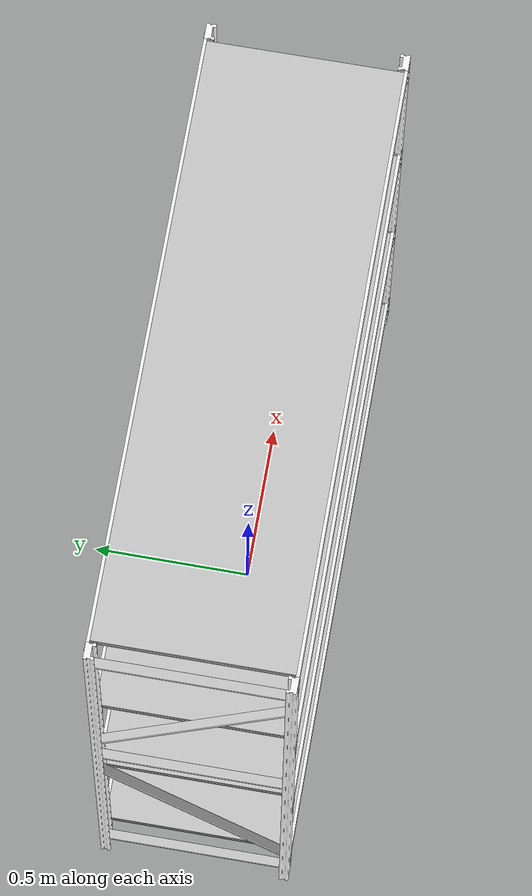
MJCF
<mujoco>
  <compiler angle="radian" assetdir="assets" autolimits="true"/>

  <asset>

    <!-- Textures -->
    <texture type="2d" colorspace="sRGB" name="MI_Liang" file="MI_Liang.png"/>
    <texture type="2d" colorspace="sRGB" name="MI_Zhu" file="MI_Zhu.png"/>

    <!-- Materials -->
    <material name="MI_Shelf" rgba="0.8 0.8 0.8 1" reflectance="0.5" metallic="0.8" roughness="0.8"/>
    <material name="MI_Liang" rgba="1 1 1 1" reflectance="0.5" metallic="0.8" roughness="0.8">
      <layer texture="MI_Liang" role="rgb"/>
    </material>
    <material name="MI_Zhu" rgba="1 1 1 1" reflectance="0.5" metallic="0.8" roughness="0.8">
      <layer texture="MI_Zhu" role="rgb"/>
    </material>

    <!-- Visual meshes -->
    <mesh class="visual" name="V_Ban" file="V_Ban.obj"/>
    <mesh class="visual" name="V_HLiang" file="V_HLiang.obj"/>
    <mesh class="visual" name="V_Liang" file="V_Liang.obj"/>
    <mesh class="visual" name="V_XLiang" file="V_XLiang.obj"/>
    <mesh class="visual" name="V_Zhu" file="V_Zhu.obj"/>

  </asset>

  <default>
      <default class="visual">
        <geom type="mesh" contype="0" conaffinity="0" group="2" density="0"/>
      </default>
  </default>

  <worldbody>

    <body name="B_Shelf_Single" pos="0.0 0.0 0.0" quat="1.0 0.0 0.0 0.0">
      <geom class="visual" mesh="V_Ban" pos="0.0 0.0 0.0" quat="1.0 0.0 0.0 0.0" material="MI_Shelf"/>
      <geom class="visual" mesh="V_HLiang" pos="0.0 0.0 0.0" quat="1.0 0.0 0.0 0.0" material="MI_Shelf"/>
      <geom class="visual" mesh="V_Liang" pos="0.0 0.0 0.0" quat="1.0 0.0 0.0 0.0" material="MI_Liang"/>
      <geom class="visual" mesh="V_XLiang" pos="-0.9569998979568481 0.0 0.5525000095367432" quat="6.9236115507465e-08 -3.0104722270607454e-08 0.3987491726875305 -0.9170600175857544" material="MI_Shelf"/>
      <geom class="visual" mesh="V_Zhu" pos="0.0 0.0 0.0" quat="1.0 0.0 0.0 0.0" material="MI_Zhu"/>
    </body>
  </worldbody>

</mujoco>
